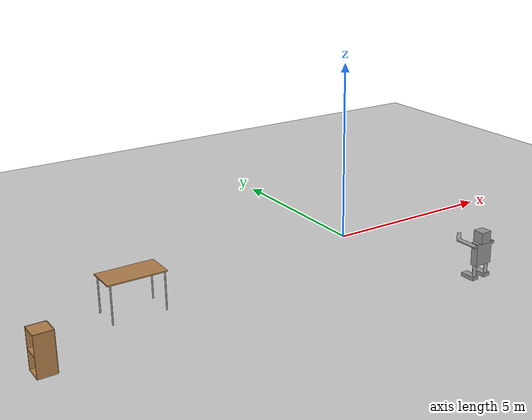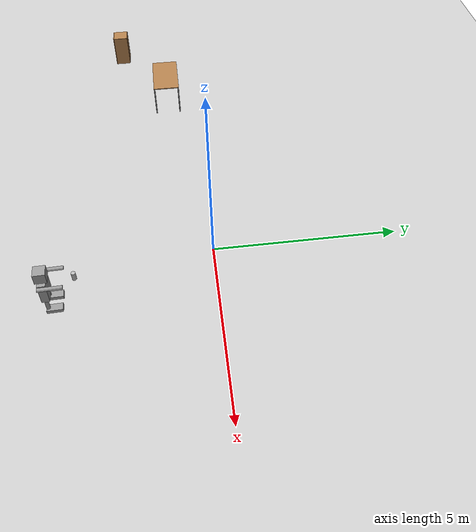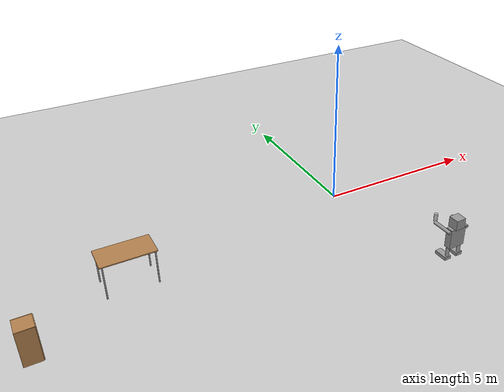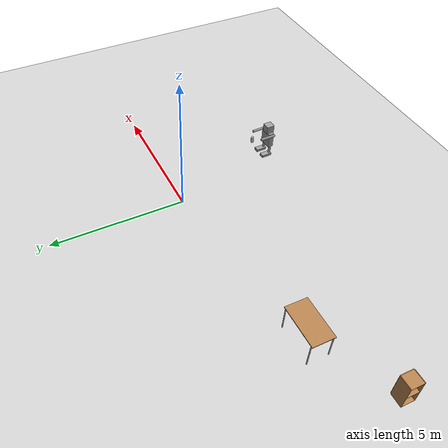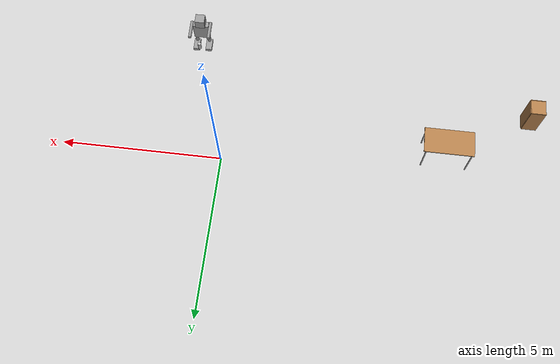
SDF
<sdf version="1.6">
 <world name="default">
  <model name="ground_plane">
   <static>1</static>
   <link name="link">
    <collision name="collision">
     <geometry><plane><normal>0 0 1</normal><size>100 100</size></plane></geometry>
     <surface><friction><ode><mu>100</mu><mu2>50</mu2></ode></friction></surface>
    </collision>
    <visual name="visual">
     <cast_shadows>0</cast_shadows>
     <geometry><plane><normal>0 0 1</normal><size>100 100</size></plane></geometry>
     <material>
      <script><uri>file://media/materials/scripts/gazebo.material</uri><name>Gazebo/Grey</name></script>
     </material>
    </visual>
   </link>
  </model>
  <model name="Robot_0">
   <link name="link_0_clone">
    <pose>0.4 0.150001 0.299999 -2e-05 0 0</pose>
    <inertial>
     <mass>1</mass>
     <inertia><ixx>0.145833</ixx><ixy>0</ixy><ixz>0</ixz><iyy>0.145833</iyy><iyz>0</iyz><izz>0.125</izz></inertia>
    </inertial>
    <visual name="visual">
     <geometry><cylinder><radius>0.05</radius><length>0.3</length></cylinder></geometry>
     <material>
      <lighting>1</lighting>
      <script><uri>file://media/materials/scripts/gazebo.material</uri><name>Gazebo/Grey</name></script>
      <shader type="pixel"><normal_map>__default__</normal_map></shader>
      <ambient>0.3 0.3 0.3 1</ambient>
      <diffuse>0.7 0.7 0.7 1</diffuse>
      <specular>0.01 0.01 0.01 1</specular>
      <emissive>0 0 0 1</emissive>
     </material>
    </visual>
    <collision name="collision">
     <geometry><cylinder><radius>0.05</radius><length>0.3</length></cylinder></geometry>
     <surface>
      <friction>
       <ode><mu>1</mu><mu2>1</mu2><fdir1>0 0 0</fdir1><slip1>0</slip1><slip2>0</slip2></ode>
       <torsional>
        <coefficient>1</coefficient>
        <patch_radius>0</patch_radius>
        <surface_radius>0</surface_radius>
        <use_patch_radius>1</use_patch_radius>
        <ode><slip>0</slip></ode>
       </torsional>
      </friction>
      <bounce><restitution_coefficient>0</restitution_coefficient><threshold>1e+06</threshold></bounce>
      <contact>
       <collide_without_contact>0</collide_without_contact>
       <collide_without_contact_bitmask>1</collide_without_contact_bitmask>
       <collide_bitmask>1</collide_bitmask>
       <ode>
        <soft_cfm>0</soft_cfm>
        <soft_erp>0.2</soft_erp>
        <kp>1e+13</kp>
        <kd>1</kd>
        <max_vel>0.01</max_vel>
        <min_depth>0</min_depth>
       </ode>
       <bullet>
        <split_impulse>1</split_impulse>
        <split_impulse_penetration_threshold>-0.01</split_impulse_penetration_threshold>
        <soft_cfm>0</soft_cfm>
        <soft_erp>0.2</soft_erp>
        <kp>1e+13</kp>
        <kd>1</kd>
       </bullet>
      </contact>
     </surface>
    </collision>
   </link>
   <link name="link_0_clone_clone">
    <pose>0 0.149999 0.3 -3e-05 -0 -0</pose>
    <inertial>
     <mass>1</mass>
     <inertia><ixx>0.145833</ixx><ixy>0</ixy><ixz>0</ixz><iyy>0.145833</iyy><iyz>0</iyz><izz>0.125</izz></inertia>
    </inertial>
    <visual name="visual">
     <geometry><cylinder><radius>0.05</radius><length>0.3</length></cylinder></geometry>
     <material>
      <lighting>1</lighting>
      <script><uri>file://media/materials/scripts/gazebo.material</uri><name>Gazebo/Grey</name></script>
      <shader type="pixel"><normal_map>__default__</normal_map></shader>
      <ambient>0.3 0.3 0.3 1</ambient>
      <diffuse>0.7 0.7 0.7 1</diffuse>
      <specular>0.01 0.01 0.01 1</specular>
      <emissive>0 0 0 1</emissive>
     </material>
    </visual>
    <collision name="collision">
     <geometry><cylinder><radius>0.05</radius><length>0.3</length></cylinder></geometry>
     <surface>
      <friction>
       <ode><mu>1</mu><mu2>1</mu2><fdir1>0 0 0</fdir1><slip1>0</slip1><slip2>0</slip2></ode>
       <torsional>
        <coefficient>1</coefficient>
        <patch_radius>0</patch_radius>
        <surface_radius>0</surface_radius>
        <use_patch_radius>1</use_patch_radius>
        <ode><slip>0</slip></ode>
       </torsional>
      </friction>
      <bounce><restitution_coefficient>0</restitution_coefficient><threshold>1e+06</threshold></bounce>
      <contact>
       <collide_without_contact>0</collide_without_contact>
       <collide_without_contact_bitmask>1</collide_without_contact_bitmask>
       <collide_bitmask>1</collide_bitmask>
       <ode>
        <soft_cfm>0</soft_cfm>
        <soft_erp>0.2</soft_erp>
        <kp>1e+13</kp>
        <kd>1</kd>
        <max_vel>0.01</max_vel>
        <min_depth>0</min_depth>
       </ode>
       <bullet>
        <split_impulse>1</split_impulse>
        <split_impulse_penetration_threshold>-0.01</split_impulse_penetration_threshold>
        <soft_cfm>0</soft_cfm>
        <soft_erp>0.2</soft_erp>
        <kp>1e+13</kp>
        <kd>1</kd>
       </bullet>
      </contact>
     </surface>
    </collision>
   </link>
   <link name="link_0_clone_clone_0">
    <pose>-0.1 -0.049994 0.999978 1.5707 -0 0</pose>
    <inertial>
     <mass>1</mass>
     <inertia><ixx>0.145833</ixx><ixy>0</ixy><ixz>0</ixz><iyy>0.145833</iyy><iyz>0</iyz><izz>0.125</izz></inertia>
    </inertial>
    <visual name="visual">
     <geometry><cylinder><radius>0.05</radius><length>0.6</length></cylinder></geometry>
     <material>
      <lighting>1</lighting>
      <script><uri>file://media/materials/scripts/gazebo.material</uri><name>Gazebo/Grey</name></script>
      <shader type="pixel"><normal_map>__default__</normal_map></shader>
      <ambient>0.3 0.3 0.3 1</ambient>
      <diffuse>0.7 0.7 0.7 1</diffuse>
      <specular>0.01 0.01 0.01 1</specular>
      <emissive>0 0 0 1</emissive>
     </material>
    </visual>
    <collision name="collision">
     <geometry><cylinder><radius>0.05</radius><length>0.6</length></cylinder></geometry>
     <surface>
      <friction>
       <ode><mu>1</mu><mu2>1</mu2><fdir1>0 0 0</fdir1><slip1>0</slip1><slip2>0</slip2></ode>
       <torsional>
        <coefficient>1</coefficient>
        <patch_radius>0</patch_radius>
        <surface_radius>0</surface_radius>
        <use_patch_radius>1</use_patch_radius>
        <ode><slip>0</slip></ode>
       </torsional>
      </friction>
      <bounce><restitution_coefficient>0</restitution_coefficient><threshold>1e+06</threshold></bounce>
      <contact>
       <collide_without_contact>0</collide_without_contact>
       <collide_without_contact_bitmask>1</collide_without_contact_bitmask>
       <collide_bitmask>1</collide_bitmask>
       <ode>
        <soft_cfm>0</soft_cfm>
        <soft_erp>0.2</soft_erp>
        <kp>1e+13</kp>
        <kd>1</kd>
        <max_vel>0.01</max_vel>
        <min_depth>0</min_depth>
       </ode>
       <bullet>
        <split_impulse>1</split_impulse>
        <split_impulse_penetration_threshold>-0.01</split_impulse_penetration_threshold>
        <soft_cfm>0</soft_cfm>
        <soft_erp>0.2</soft_erp>
        <kp>1e+13</kp>
        <kd>1</kd>
       </bullet>
      </contact>
     </surface>
    </collision>
   </link>
   <link name="link_0_clone_clone_0_clone">
    <pose>0.5 -0.049994 0.999978 1.5707 -0 0</pose>
    <inertial>
     <mass>1</mass>
     <inertia><ixx>0.145833</ixx><ixy>0</ixy><ixz>0</ixz><iyy>0.145833</iyy><iyz>0</iyz><izz>0.125</izz></inertia>
    </inertial>
    <visual name="visual">
     <geometry><cylinder><radius>0.05</radius><length>0.6</length></cylinder></geometry>
     <material>
      <lighting>1</lighting>
      <script><uri>file://media/materials/scripts/gazebo.material</uri><name>Gazebo/Grey</name></script>
      <shader type="pixel"><normal_map>__default__</normal_map></shader>
      <ambient>0.3 0.3 0.3 1</ambient>
      <diffuse>0.7 0.7 0.7 1</diffuse>
      <specular>0.01 0.01 0.01 1</specular>
      <emissive>0 0 0 1</emissive>
     </material>
    </visual>
    <collision name="collision">
     <geometry><cylinder><radius>0.05</radius><length>0.6</length></cylinder></geometry>
     <surface>
      <friction>
       <ode><mu>1</mu><mu2>1</mu2><fdir1>0 0 0</fdir1><slip1>0</slip1><slip2>0</slip2></ode>
       <torsional>
        <coefficient>1</coefficient>
        <patch_radius>0</patch_radius>
        <surface_radius>0</surface_radius>
        <use_patch_radius>1</use_patch_radius>
        <ode><slip>0</slip></ode>
       </torsional>
      </friction>
      <bounce><restitution_coefficient>0</restitution_coefficient><threshold>1e+06</threshold></bounce>
      <contact>
       <collide_without_contact>0</collide_without_contact>
       <collide_without_contact_bitmask>1</collide_without_contact_bitmask>
       <collide_bitmask>1</collide_bitmask>
       <ode>
        <soft_cfm>0</soft_cfm>
        <soft_erp>0.2</soft_erp>
        <kp>1e+13</kp>
        <kd>1</kd>
        <max_vel>0.01</max_vel>
        <min_depth>0</min_depth>
       </ode>
       <bullet>
        <split_impulse>1</split_impulse>
        <split_impulse_penetration_threshold>-0.01</split_impulse_penetration_threshold>
        <soft_cfm>0</soft_cfm>
        <soft_erp>0.2</soft_erp>
        <kp>1e+13</kp>
        <kd>1</kd>
       </bullet>
      </contact>
     </surface>
    </collision>
   </link>
   <link name="link_clone">
    <pose>-0 -0 0.1 -1e-05 -0 0</pose>
    <inertial>
     <mass>1</mass>
     <inertia>
      <ixx>0.166667</ixx>
      <ixy>0</ixy>
      <ixz>0</ixz>
      <iyy>0.166667</iyy>
      <iyz>0</iyz>
      <izz>0.166667</izz>
     </inertia>
    </inertial>
    <visual name="visual">
     <geometry><box><size>0.2 0.4 0.1</size></box></geometry>
     <material>
      <script><name>Gazebo/Grey</name><uri>file://media/materials/scripts/gazebo.material</uri></script>
      <shader type="pixel"><normal_map>__default__</normal_map></shader>
      <ambient>0.3 0.3 0.3 1</ambient>
      <diffuse>0.7 0.7 0.7 1</diffuse>
      <specular>0.01 0.01 0.01 1</specular>
      <emissive>0 0 0 1</emissive>
     </material>
    </visual>
    <collision name="collision">
     <geometry><box><size>0.2 0.4 0.1</size></box></geometry>
     <surface>
      <friction>
       <ode><mu>1</mu><mu2>1</mu2><fdir1>0 0 0</fdir1><slip1>0</slip1><slip2>0</slip2></ode>
       <torsional>
        <coefficient>1</coefficient>
        <patch_radius>0</patch_radius>
        <surface_radius>0</surface_radius>
        <use_patch_radius>1</use_patch_radius>
        <ode><slip>0</slip></ode>
       </torsional>
      </friction>
      <bounce><restitution_coefficient>0</restitution_coefficient><threshold>1e+06</threshold></bounce>
      <contact>
       <collide_without_contact>0</collide_without_contact>
       <collide_without_contact_bitmask>1</collide_without_contact_bitmask>
       <collide_bitmask>1</collide_bitmask>
       <ode>
        <soft_cfm>0</soft_cfm>
        <soft_erp>0.2</soft_erp>
        <kp>1e+13</kp>
        <kd>1</kd>
        <max_vel>0.01</max_vel>
        <min_depth>0</min_depth>
       </ode>
       <bullet>
        <split_impulse>1</split_impulse>
        <split_impulse_penetration_threshold>-0.01</split_impulse_penetration_threshold>
        <soft_cfm>0</soft_cfm>
        <soft_erp>0.2</soft_erp>
        <kp>1e+13</kp>
        <kd>1</kd>
       </bullet>
      </contact>
     </surface>
    </collision>
   </link>
   <link name="link_clone_0">
    <pose>0.4 -0 0.1 -1e-05 -0 0</pose>
    <inertial>
     <mass>1</mass>
     <inertia>
      <ixx>0.166667</ixx>
      <ixy>0</ixy>
      <ixz>0</ixz>
      <iyy>0.166667</iyy>
      <iyz>0</iyz>
      <izz>0.166667</izz>
     </inertia>
    </inertial>
    <visual name="visual">
     <geometry><box><size>0.2 0.4 0.1</size></box></geometry>
     <material>
      <script><name>Gazebo/Grey</name><uri>file://media/materials/scripts/gazebo.material</uri></script>
      <shader type="pixel"><normal_map>__default__</normal_map></shader>
      <ambient>0.3 0.3 0.3 1</ambient>
      <diffuse>0.7 0.7 0.7 1</diffuse>
      <specular>0.01 0.01 0.01 1</specular>
      <emissive>0 0 0 1</emissive>
     </material>
    </visual>
    <collision name="collision">
     <geometry><box><size>0.2 0.4 0.1</size></box></geometry>
     <surface>
      <friction>
       <ode><mu>1</mu><mu2>1</mu2><fdir1>0 0 0</fdir1><slip1>0</slip1><slip2>0</slip2></ode>
       <torsional>
        <coefficient>1</coefficient>
        <patch_radius>0</patch_radius>
        <surface_radius>0</surface_radius>
        <use_patch_radius>1</use_patch_radius>
        <ode><slip>0</slip></ode>
       </torsional>
      </friction>
      <bounce><restitution_coefficient>0</restitution_coefficient><threshold>1e+06</threshold></bounce>
      <contact>
       <collide_without_contact>0</collide_without_contact>
       <collide_without_contact_bitmask>1</collide_without_contact_bitmask>
       <collide_bitmask>1</collide_bitmask>
       <ode>
        <soft_cfm>0</soft_cfm>
        <soft_erp>0.2</soft_erp>
        <kp>1e+13</kp>
        <kd>1</kd>
        <max_vel>0.01</max_vel>
        <min_depth>0</min_depth>
       </ode>
       <bullet>
        <split_impulse>1</split_impulse>
        <split_impulse_penetration_threshold>-0.01</split_impulse_penetration_threshold>
        <soft_cfm>0</soft_cfm>
        <soft_erp>0.2</soft_erp>
        <kp>1e+13</kp>
        <kd>1</kd>
       </bullet>
      </contact>
     </surface>
    </collision>
   </link>
   <link name="link_clone_0_clone">
    <pose>0.2 0.150005 0.750001 -2e-05 0 0</pose>
    <inertial>
     <mass>1</mass>
     <inertia>
      <ixx>0.166667</ixx>
      <ixy>0</ixy>
      <ixz>0</ixz>
      <iyy>0.166667</iyy>
      <iyz>0</iyz>
      <izz>0.166667</izz>
     </inertia>
    </inertial>
    <visual name="visual">
     <geometry><box><size>0.5 0.2 0.6</size></box></geometry>
     <material>
      <script><name>Gazebo/Grey</name><uri>file://media/materials/scripts/gazebo.material</uri></script>
      <shader type="pixel"><normal_map>__default__</normal_map></shader>
      <ambient>0.3 0.3 0.3 1</ambient>
      <diffuse>0.7 0.7 0.7 1</diffuse>
      <specular>0.01 0.01 0.01 1</specular>
      <emissive>0 0 0 1</emissive>
     </material>
    </visual>
    <collision name="collision">
     <geometry><box><size>0.5 0.2 0.6</size></box></geometry>
     <surface>
      <friction>
       <ode><mu>1</mu><mu2>1</mu2><fdir1>0 0 0</fdir1><slip1>0</slip1><slip2>0</slip2></ode>
       <torsional>
        <coefficient>1</coefficient>
        <patch_radius>0</patch_radius>
        <surface_radius>0</surface_radius>
        <use_patch_radius>1</use_patch_radius>
        <ode><slip>0</slip></ode>
       </torsional>
      </friction>
      <bounce><restitution_coefficient>0</restitution_coefficient><threshold>1e+06</threshold></bounce>
      <contact>
       <collide_without_contact>0</collide_without_contact>
       <collide_without_contact_bitmask>1</collide_without_contact_bitmask>
       <collide_bitmask>1</collide_bitmask>
       <ode>
        <soft_cfm>0</soft_cfm>
        <soft_erp>0.2</soft_erp>
        <kp>1e+13</kp>
        <kd>1</kd>
        <max_vel>0.01</max_vel>
        <min_depth>0</min_depth>
       </ode>
       <bullet>
        <split_impulse>1</split_impulse>
        <split_impulse_penetration_threshold>-0.01</split_impulse_penetration_threshold>
        <soft_cfm>0</soft_cfm>
        <soft_erp>0.2</soft_erp>
        <kp>1e+13</kp>
        <kd>1</kd>
       </bullet>
      </contact>
     </surface>
    </collision>
   </link>
   <link name="link_clone_0_clone_clone">
    <pose>0.2 0.150009 1.2 -3e-05 -0 -0</pose>
    <inertial>
     <mass>1</mass>
     <inertia>
      <ixx>0.166667</ixx>
      <ixy>0</ixy>
      <ixz>0</ixz>
      <iyy>0.166667</iyy>
      <iyz>0</iyz>
      <izz>0.166667</izz>
     </inertia>
    </inertial>
    <visual name="visual">
     <geometry><box><size>0.3 0.3 0.3</size></box></geometry>
     <material>
      <script><name>Gazebo/Grey</name><uri>file://media/materials/scripts/gazebo.material</uri></script>
      <shader type="pixel"><normal_map>__default__</normal_map></shader>
      <ambient>0.3 0.3 0.3 1</ambient>
      <diffuse>0.7 0.7 0.7 1</diffuse>
      <specular>0.01 0.01 0.01 1</specular>
      <emissive>0 0 0 1</emissive>
     </material>
    </visual>
    <collision name="collision">
     <geometry><box><size>0.3 0.3 0.3</size></box></geometry>
     <surface>
      <friction>
       <ode><mu>1</mu><mu2>1</mu2><fdir1>0 0 0</fdir1><slip1>0</slip1><slip2>0</slip2></ode>
       <torsional>
        <coefficient>1</coefficient>
        <patch_radius>0</patch_radius>
        <surface_radius>0</surface_radius>
        <use_patch_radius>1</use_patch_radius>
        <ode><slip>0</slip></ode>
       </torsional>
      </friction>
      <bounce><restitution_coefficient>0</restitution_coefficient><threshold>1e+06</threshold></bounce>
      <contact>
       <collide_without_contact>0</collide_without_contact>
       <collide_without_contact_bitmask>1</collide_without_contact_bitmask>
       <collide_bitmask>1</collide_bitmask>
       <ode>
        <soft_cfm>0</soft_cfm>
        <soft_erp>0.2</soft_erp>
        <kp>1e+13</kp>
        <kd>1</kd>
        <max_vel>0.01</max_vel>
        <min_depth>0</min_depth>
       </ode>
       <bullet>
        <split_impulse>1</split_impulse>
        <split_impulse_penetration_threshold>-0.01</split_impulse_penetration_threshold>
        <soft_cfm>0</soft_cfm>
        <soft_erp>0.2</soft_erp>
        <kp>1e+13</kp>
        <kd>1</kd>
       </bullet>
      </contact>
     </surface>
    </collision>
   </link>
   <joint name="link_0_clone_JOINT_5" type="fixed">
    <parent>link_0_clone</parent>
    <child>link_clone_0_clone</child>
    <physics>
     <ode><limit><cfm>0</cfm><erp>0.2</erp></limit><suspension><cfm>0</cfm><erp>0.2</erp></suspension></ode>
    </physics>
   </joint>
   <joint name="link_0_clone_clone_JOINT_4" type="fixed">
    <parent>link_0_clone_clone</parent>
    <child>link_clone_0_clone</child>
    <physics>
     <ode><limit><cfm>0</cfm><erp>0.2</erp></limit><suspension><cfm>0</cfm><erp>0.2</erp></suspension></ode>
    </physics>
   </joint>
   <joint name="link_clone_0_JOINT_1" type="fixed">
    <parent>link_clone_0</parent>
    <child>link_0_clone</child>
    <physics>
     <ode><limit><cfm>0</cfm><erp>0.2</erp></limit><suspension><cfm>0</cfm><erp>0.2</erp></suspension></ode>
    </physics>
   </joint>
   <joint name="link_clone_0_clone_JOINT_6" type="fixed">
    <parent>link_clone_0_clone</parent>
    <child>link_clone_0_clone_clone</child>
    <physics>
     <ode><limit><cfm>0</cfm><erp>0.2</erp></limit><suspension><cfm>0</cfm><erp>0.2</erp></suspension></ode>
    </physics>
   </joint>
   <joint name="link_clone_0_clone_JOINT_8" type="fixed">
    <parent>link_clone_0_clone</parent>
    <child>link_0_clone_clone_0_clone</child>
    <physics>
     <ode><limit><cfm>0</cfm><erp>0.2</erp></limit><suspension><cfm>0</cfm><erp>0.2</erp></suspension></ode>
    </physics>
   </joint>
   <joint name="link_clone_0_clone_JOINT_9" type="fixed">
    <parent>link_clone_0_clone</parent>
    <child>link_0_clone_clone_0</child>
    <physics>
     <ode><limit><cfm>0</cfm><erp>0.2</erp></limit><suspension><cfm>0</cfm><erp>0.2</erp></suspension></ode>
    </physics>
   </joint>
   <joint name="link_clone_JOINT_0" type="fixed">
    <parent>link_clone</parent>
    <child>link_0_clone_clone</child>
    <physics>
     <ode><limit><cfm>0</cfm><erp>0.2</erp></limit><suspension><cfm>0</cfm><erp>0.2</erp></suspension></ode>
    </physics>
   </joint>
   <static>0</static>
   <pose>1.41473 -4.05266 -0.05 1e-05 -2e-06 -3.11194</pose>
  </model>
  <model name="beer_clone">
   <link name="link">
    <pose>0 0 0.115 0 -0 0</pose>
    <inertial>
     <mass>0.39</mass>
     <inertia><ixx>0.00058</ixx><ixy>0</ixy><ixz>0</ixz><iyy>0.00058</iyy><iyz>0</iyz><izz>0.00019</izz></inertia>
    </inertial>
    <collision name="collision">
     <geometry><cylinder><radius>0.055</radius><length>0.23</length></cylinder></geometry>
    </collision>
    <visual name="visual">
     <geometry><cylinder><radius>0.055</radius><length>0.23</length></cylinder></geometry>
     <material>
      <script>
       <uri>model://beer/materials/scripts</uri>
       <uri>model://beer/materials/textures</uri>
       <name>Beer/Diffuse</name>
      </script>
     </material>
    </visual>
   </link>
   <pose>1.14791 -3.46584 0.774993 4.3e-05 2e-06 0.000609</pose>
  </model>
  <model name="table">
   <static>1</static>
   <link name="link">
    <collision name="surface">
     <pose>0 0 1 0 -0 0</pose>
     <geometry><box><size>1.5 0.8 0.03</size></box></geometry>
     <surface><friction><ode><mu>0.6</mu><mu2>0.6</mu2></ode></friction></surface>
    </collision>
    <visual name="visual1">
     <pose>0 0 1 0 -0 0</pose>
     <geometry><box><size>1.5 0.8 0.03</size></box></geometry>
     <material>
      <script><uri>file://media/materials/scripts/gazebo.material</uri><name>Gazebo/Wood</name></script>
     </material>
    </visual>
    <collision name="front_left_leg">
     <pose>0.68 0.38 0.5 0 -0 0</pose>
     <geometry><cylinder><radius>0.02</radius><length>1</length></cylinder></geometry>
    </collision>
    <visual name="front_left_leg">
     <pose>0.68 0.38 0.5 0 -0 0</pose>
     <geometry><cylinder><radius>0.02</radius><length>1</length></cylinder></geometry>
     <material>
      <script><uri>file://media/materials/scripts/gazebo.material</uri><name>Gazebo/Grey</name></script>
     </material>
    </visual>
    <collision name="front_right_leg">
     <pose>0.68 -0.38 0.5 0 -0 0</pose>
     <geometry><cylinder><radius>0.02</radius><length>1</length></cylinder></geometry>
    </collision>
    <visual name="front_right_leg">
     <pose>0.68 -0.38 0.5 0 -0 0</pose>
     <geometry><cylinder><radius>0.02</radius><length>1</length></cylinder></geometry>
     <material>
      <script><uri>file://media/materials/scripts/gazebo.material</uri><name>Gazebo/Grey</name></script>
     </material>
    </visual>
    <collision name="back_right_leg">
     <pose>-0.68 -0.38 0.5 0 -0 0</pose>
     <geometry><cylinder><radius>0.02</radius><length>1</length></cylinder></geometry>
    </collision>
    <visual name="back_right_leg">
     <pose>-0.68 -0.38 0.5 0 -0 0</pose>
     <geometry><cylinder><radius>0.02</radius><length>1</length></cylinder></geometry>
     <material>
      <script><uri>file://media/materials/scripts/gazebo.material</uri><name>Gazebo/Grey</name></script>
     </material>
    </visual>
    <collision name="back_left_leg">
     <pose>-0.68 0.38 0.5 0 -0 0</pose>
     <geometry><cylinder><radius>0.02</radius><length>1</length></cylinder></geometry>
    </collision>
    <visual name="back_left_leg">
     <pose>-0.68 0.38 0.5 0 -0 0</pose>
     <geometry><cylinder><radius>0.02</radius><length>1</length></cylinder></geometry>
     <material>
      <script><uri>file://media/materials/scripts/gazebo.material</uri><name>Gazebo/Grey</name></script>
     </material>
    </visual>
   </link>
   <pose>-6.85189 -0.910012 0 0 -0 0</pose>
  </model>
  <model name="cabinet">
   <static>1</static>
   <link name="cabinet_bottom_plate">
    <inertial>
     <pose>0 0 -1 0 -0 0</pose>
     <inertia><ixx>2.05</ixx><ixy>0</ixy><ixz>0</ixz><iyy>2.05</iyy><iyz>0</iyz><izz>2.05</izz></inertia>
     <mass>25</mass>
    </inertial>
    <collision name="cabinet_bottom_plate_geom">
     <pose>0 0 0.01 0 -0 0</pose>
     <geometry><box><size>0.45 0.45 0.02</size></box></geometry>
    </collision>
    <visual name="cabinet_bottom_plate_geom_visual">
     <pose>0 0 0.01 0 -0 0</pose>
     <geometry><box><size>0.45 0.45 0.02</size></box></geometry>
     <material>
      <script><uri>file://media/materials/scripts/gazebo.material</uri><name>Gazebo/Wood</name></script>
     </material>
    </visual>
    <collision name="cabinet_bottom_plate_geom_cabinet_back_plate">
     <pose>0.235 0 0.51 0 -0 0</pose>
     <geometry><box><size>0.02 0.45 1.02</size></box></geometry>
    </collision>
    <visual name="cabinet_bottom_plate_geom_cabinet_back_plate_visual">
     <pose>0.235 0 0.51 0 -0 0</pose>
     <geometry><box><size>0.02 0.45 1.02</size></box></geometry>
     <material>
      <script><uri>file://media/materials/scripts/gazebo.material</uri><name>Gazebo/Wood</name></script>
     </material>
    </visual>
    <collision name="cabinet_bottom_plate_geom_cabinet_left_plate">
     <pose>0 0.235 0.51 0 -0 0</pose>
     <geometry><box><size>0.45 0.02 1.02</size></box></geometry>
    </collision>
    <visual name="cabinet_bottom_plate_geom_cabinet_left_plate_visual">
     <pose>0 0.235 0.51 0 -0 0</pose>
     <geometry><box><size>0.45 0.02 1.02</size></box></geometry>
     <material>
      <script><uri>file://media/materials/scripts/gazebo.material</uri><name>Gazebo/Wood</name></script>
     </material>
    </visual>
    <collision name="cabinet_bottom_plate_geom_cabinet_middle_plate">
     <pose>0 0 0.51 0 -0 0</pose>
     <geometry><box><size>0.45 0.45 0.02</size></box></geometry>
    </collision>
    <visual name="cabinet_bottom_plate_geom_cabinet_middle_plate_visual">
     <pose>0 0 0.51 0 -0 0</pose>
     <geometry><box><size>0.45 0.45 0.02</size></box></geometry>
     <material>
      <script><uri>file://media/materials/scripts/gazebo.material</uri><name>Gazebo/Wood</name></script>
     </material>
    </visual>
    <collision name="cabinet_bottom_plate_geom_cabinet_right_plate">
     <pose>0 -0.235 0.51 0 -0 0</pose>
     <geometry><box><size>0.45 0.02 1.02</size></box></geometry>
    </collision>
    <visual name="cabinet_bottom_plate_geom_cabinet_right_plate_visual">
     <pose>0 -0.235 0.51 0 -0 0</pose>
     <geometry><box><size>0.45 0.02 1.02</size></box></geometry>
     <material>
      <script><uri>file://media/materials/scripts/gazebo.material</uri><name>Gazebo/Wood</name></script>
     </material>
    </visual>
    <collision name="cabinet_bottom_plate_geom_cabinet_top_plate">
     <pose>0 0 1.01 0 -0 0</pose>
     <geometry><box><size>0.45 0.45 0.02</size></box></geometry>
    </collision>
    <visual name="cabinet_bottom_plate_geom_cabinet_top_plate_visual">
     <pose>0 0 1.01 0 -0 0</pose>
     <geometry><box><size>0.45 0.45 0.02</size></box></geometry>
     <material>
      <script><uri>file://media/materials/scripts/gazebo.material</uri><name>Gazebo/Wood</name></script>
     </material>
    </visual>
   </link>
   <pose>-9.52033 -2.38917 0 0 -0 0</pose>
  </model>
 </world>
</sdf>
